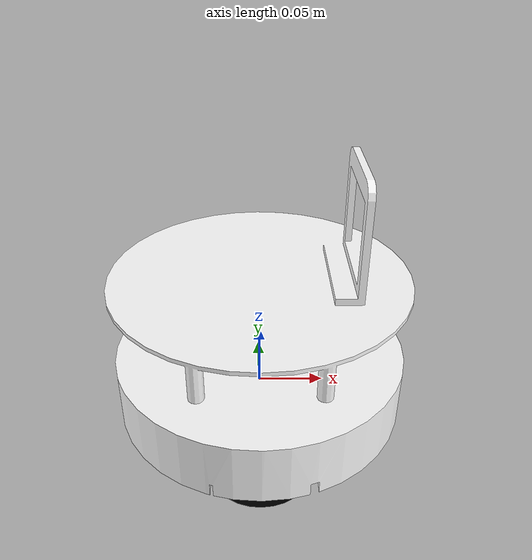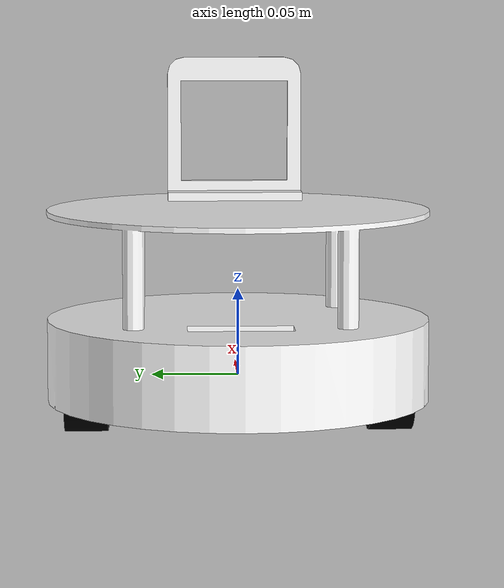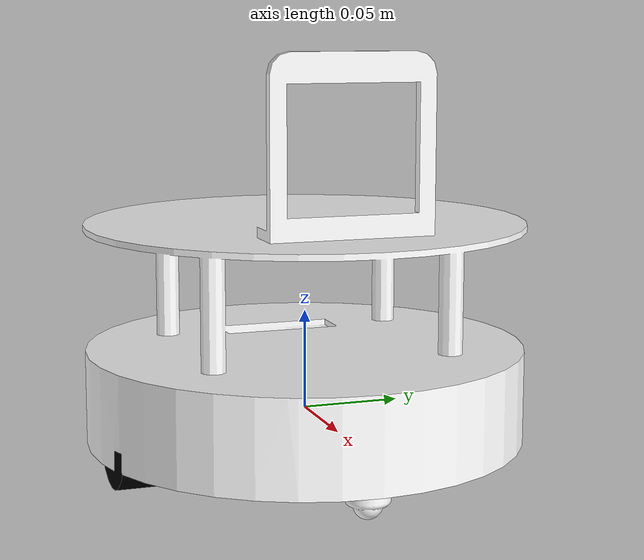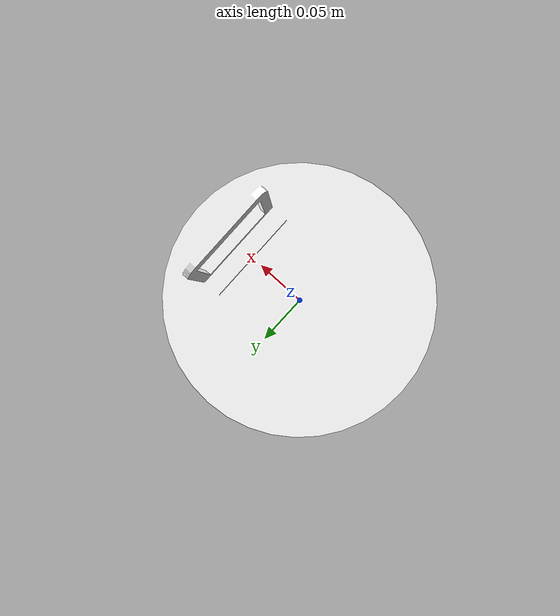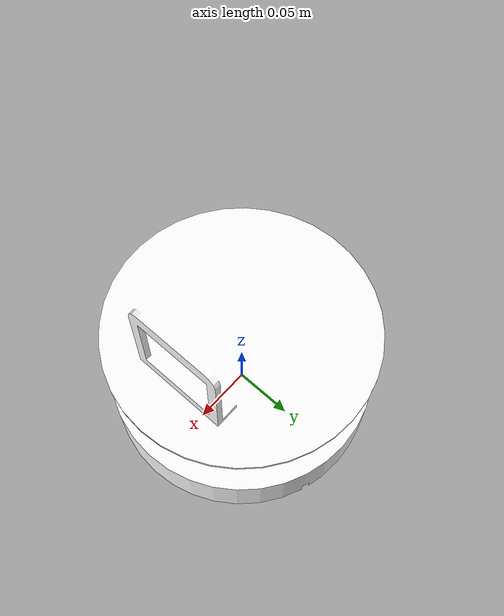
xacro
<?xml version="1.0"?>
<robot xmlns:xacro="http://www.ros.org/wiki/xacro" >

    <xacro:include filename="inertial_macros.xacro"/>

    <material name="white">
        <color rgba="1 1 1 1" />
    </material>

    <material name="orange">
        <color rgba="1 0.3 0.1 1"/>
    </material>

    <material name="gray">
        <color rgba="0.7 0.7 0.7 1"/>
    </material>

    <material name="black">
        <color rgba="0 0 0 1"/>
    </material>

    <material name="red">
        <color rgba="1 0 0 1"/>
    </material>

    <!-- BASE LINK -->

    <link name="base_link">

    </link>

    <!-- CHASSIS LINK -->

    <joint name="chassis_joint" type="fixed">
        <parent link="base_link"/>
        <child link="chassis"/>
        <origin xyz="0 0 0"/>
    </joint>

    <link name="chassis">
        <visual>
            <origin xyz="0 0 -0.014" rpy="0 0 ${pi}"/>
            <geometry>
                <mesh filename="file:///$(find dhtbot_one)/meshes/base_link.STL" scale="1 1 1"/>
            </geometry>
            <material name="white"/>
        </visual>
        <collision>
            <origin xyz="0 0 0.045"/>
            <geometry>
                <cylinder radius="0.115" length="0.12"/>
            </geometry>
        </collision>
        <xacro:inertial_cylinder mass="1.0" length="0.12" radius="0.115">
            <origin xyz="0.03 0 0" rpy="0 0 0"/>
        </xacro:inertial_cylinder>
    </link>

    <gazebo reference="chassis">
        <material>Gazebo/White</material>
    </gazebo>

    <!-- LEFT WHEEL LINK -->

    <joint name="left_wheel_joint" type="continuous">
        <parent link="base_link"/>
        <child link="left_wheel"/>
        <origin xyz="0 0.0875 0" rpy="-${pi/2} 0 0"/>
        <axis xyz="0 0 1"/>
    </joint>

    <link name="left_wheel">
        <visual>
            <geometry>
                <cylinder radius="0.0325" length="0.025"/>
            </geometry>
            <material name="black"/>
        </visual>
        <collision>
            <geometry>
                <sphere radius="0.0325"/>
            </geometry>
        </collision>
        <xacro:inertial_sphere mass="0.1" radius="0.0325">
            <origin xyz="0 0 0" rpy="0 0 0"/>
        </xacro:inertial_sphere>
    </link>

    <gazebo reference="left_wheel">
        <material>Gazebo/Black</material>
        <mu1 value="1.0"/>
        <mu2 value="1.0"/>
    </gazebo>

    <!-- RIGHT WHEEL LINK -->

    <joint name="right_wheel_joint" type="continuous">
        <parent link="base_link"/>
        <child link="right_wheel"/>
        <origin xyz="0 -0.0875 0" rpy="${pi/2} 0 0"/>
        <axis xyz="0 0 -1"/>
    </joint>

    <link name="right_wheel">
        <visual>
            <geometry>
                <cylinder radius="0.0325" length="0.025"/>
            </geometry>
            <material name="black"/>
        </visual>
        <collision>
            <geometry>
                <sphere radius="0.0325"/>
            </geometry>
        </collision>
        <xacro:inertial_sphere mass="0.1" radius="0.0325">
            <origin xyz="0 0 0" rpy="0 0 0"/>
        </xacro:inertial_sphere>
    </link>

    <gazebo reference="right_wheel">
        <material>Gazebo/Black</material>
        <mu1 value="1.0"/>
        <mu2 value="1.0"/>
    </gazebo>

    <!-- CASTER WHEEL LINK -->

    <joint name="caster_wheel_joint" type="fixed">
        <parent link="chassis"/>
        <child link="caster_wheel"/>
        <origin xyz="0.09 0 -0.015"/>
    </joint>

    <link name="caster_wheel">
        <visual>
            <geometry>
                <mesh filename="file:///$(find dhtbot_one)/meshes/caster_wheel_link.STL" />-
            </geometry>
            <material name="white"/>
        </visual>
        <collision>
            <geometry>
                <sphere radius="0.0175"/>
            </geometry>
        </collision>
        <xacro:inertial_sphere mass="0.05" radius="0.0175">
            <origin xyz="0 0 0" rpy="0 0 0"/>
        </xacro:inertial_sphere>
    </link>

    <gazebo reference="caster_wheel">
        <material>Gazebo/Black</material>
        <mu1 value="0.001"/>
        <mu2 value="0.001"/>
    </gazebo>

</robot>
